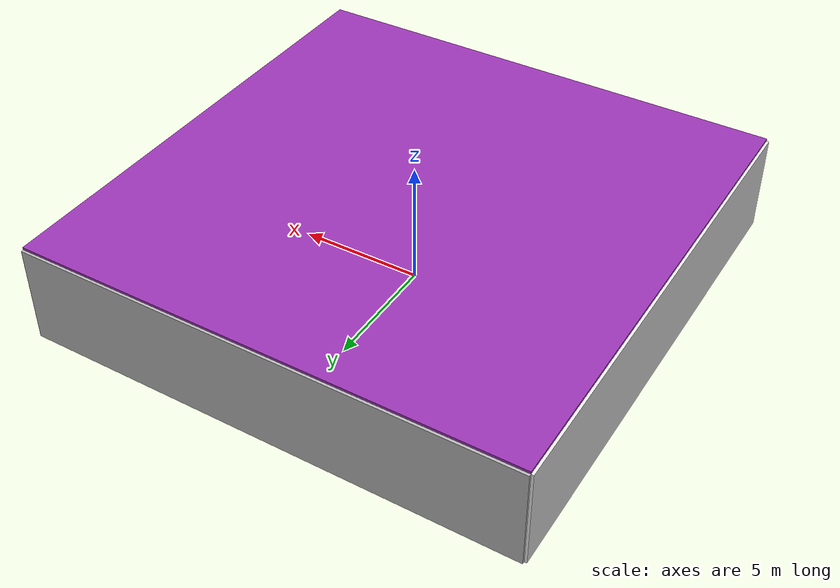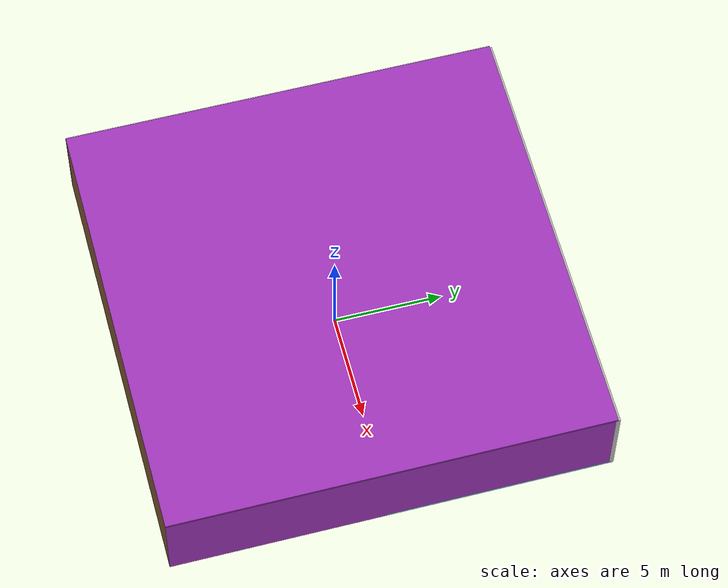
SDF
<sdf version="1.4">
 <world name="default">
  <physics type="ode">
   <max_step_size>0.001</max_step_size>
   <real_time_factor>1</real_time_factor>
   <real_time_update_rate>1000</real_time_update_rate>
   <gravity>0 0 -9.8</gravity>
  </physics>
  <scene><ambient>0.4 0.4 0.4 1</ambient><background>0.7 0.7 0.7 1</background><shadows>1</shadows></scene>
  <model name="Surrounding">
   <static>1</static>
   <link name="Ceiling">
    <collision name="Ceiling_Collision"><geometry><box><size>20 20 0.1</size></box></geometry></collision>
    <visual name="Ceiling_Visual">
     <geometry><box><size>20 20 0.1</size></box></geometry>
     <material>
      <script><uri>file://media/materials/scripts/gazebo.material</uri><name>Gazebo/Purple</name></script>
     </material>
    </visual>
    <pose>0 0 4.05 0 0 0</pose>
   </link>
   <link name="Wall_South">
    <collision name="Wall_South_Collision">
     <geometry><box><size>20 0 4</size></box></geometry>
     <pose>0 0 2 0 -0 0</pose>
    </collision>
    <visual name="Wall_South_Visual">
     <pose>0 0 2 0 -0 0</pose>
     <geometry><box><size>20 0 4</size></box></geometry>
     <material>
      <script><uri>file://media/materials/scripts/gazebo.material</uri><name>Gazebo/Wood</name></script>
     </material>
    </visual>
    <velocity_decay><linear>0</linear><angular>0</angular></velocity_decay>
    <pose>0 -10 0 0 -0 0</pose>
   </link>
   <link name="Wall_East">
    <collision name="Wall_21_Collision">
     <geometry><box><size>20 0 4</size></box></geometry>
     <pose>0 0 2 0 -0 0</pose>
    </collision>
    <visual name="Wall_21_Visual">
     <pose>0 0 2 0 -0 0</pose>
     <geometry><box><size>20 0 4</size></box></geometry>
     <material>
      <script><uri>file://media/materials/scripts/gazebo.material</uri><name>Gazebo/PurpleGlow</name></script>
     </material>
    </visual>
    <velocity_decay><linear>0</linear><angular>0</angular></velocity_decay>
    <pose>10 0 0 0 -0 1.5708</pose>
   </link>
   <link name="Wall_North">
    <collision name="Wall_22_Collision">
     <geometry><box><size>20 0.2 4</size></box></geometry>
     <pose>0 0 2 0 -0 0</pose>
    </collision>
    <visual name="Wall_22_Visual">
     <pose>0 0 2 0 -0 0</pose>
     <geometry><box><size>20 0.2 4</size></box></geometry>
     <material>
      <script><uri>file://media/materials/scripts/gazebo.material</uri><name>Gazebo/Pioneer2Body</name></script>
     </material>
    </visual>
    <velocity_decay><linear>0</linear><angular>0</angular></velocity_decay>
    <pose>0 10 0 0 -0 0</pose>
   </link>
   <link name="Wall_West">
    <collision name="Wall_23_Collision">
     <geometry><box><size>20 0.2 4</size></box></geometry>
     <pose>0 0 2 0 -0 0</pose>
    </collision>
    <visual name="Wall_23_Visual">
     <pose>0 0 2 0 -0 0</pose>
     <geometry><box><size>20 0.2 4</size></box></geometry>
     <material>
      <script><uri>file://media/materials/scripts/gazebo.material</uri><name>Gazebo/WhiteGlow</name></script>
     </material>
    </visual>
    <velocity_decay><linear>0</linear><angular>0</angular></velocity_decay>
    <pose>-10 0 0 0 0 -1.5708</pose>
   </link>
   <link name="Ground_link">
    <collision name="collision">
     <pose>0 0 .05 0 -0 0</pose>
     <geometry><box><size>20 20 0.1</size></box></geometry>
    </collision>
    <visual name="visual">
     <pose>0 0 .05 0 -0 0</pose>
     <geometry><box><size>20 20 0.1</size></box></geometry>
     <material>
      <script><uri>file://media/materials/scripts/gazebo.material</uri><name>Gazebo/SkyBlue</name></script>
     </material>
    </visual>
   </link>
   <static>1</static>
  </model>
  <spherical_coordinates>
   <surface_model>EARTH_WGS84</surface_model>
   <latitude_deg>0</latitude_deg>
   <longitude_deg>0</longitude_deg>
   <elevation>0</elevation>
   <heading_deg>0</heading_deg>
  </spherical_coordinates>
  <light name="lightball_0" type="diffuse">
   <diffuse>0.8 0.8 0.8 1</diffuse>
   <specular>0.2 0.2 0.2 1</specular>
   <attenuation>
    <range>100</range>
    <constant>0.7</constant>
    <linear>0.01</linear>
    <quadratic>0.001</quadratic>
   </attenuation>
   <direction>-0.5 0.1 -0.9</direction>
   <pose>0.687950675398 4.35472358018 3.66845504474 0 0 0</pose>
  </light>
  <light name="lightball_1" type="diffuse">
   <diffuse>0.8 0.8 0.8 1</diffuse>
   <specular>0.2 0.2 0.2 1</specular>
   <attenuation>
    <range>100</range>
    <constant>0.7</constant>
    <linear>0.01</linear>
    <quadratic>0.001</quadratic>
   </attenuation>
   <direction>-0.5 0.1 -0.9</direction>
   <pose>-5.16089282595 1.41658585565 1.48477435074 0 0 0</pose>
  </light>
  <light name="lightball_2" type="diffuse">
   <diffuse>0.8 0.8 0.8 1</diffuse>
   <specular>0.2 0.2 0.2 1</specular>
   <attenuation>
    <range>100</range>
    <constant>0.7</constant>
    <linear>0.01</linear>
    <quadratic>0.001</quadratic>
   </attenuation>
   <direction>-0.5 0.1 -0.9</direction>
   <pose>2.21568923014 -9.44584503165 2.33343793509 0 0 0</pose>
  </light>
  <light name="lightball_3" type="diffuse">
   <diffuse>0.8 0.8 0.8 1</diffuse>
   <specular>0.2 0.2 0.2 1</specular>
   <attenuation>
    <range>100</range>
    <constant>0.7</constant>
    <linear>0.01</linear>
    <quadratic>0.001</quadratic>
   </attenuation>
   <direction>-0.5 0.1 -0.9</direction>
   <pose>-1.15787419499 3.29106415092 0.62306929357 0 0 0</pose>
  </light>
  <light name="lightball_4" type="diffuse">
   <diffuse>0.8 0.8 0.8 1</diffuse>
   <specular>0.2 0.2 0.2 1</specular>
   <attenuation>
    <range>100</range>
    <constant>0.7</constant>
    <linear>0.01</linear>
    <quadratic>0.001</quadratic>
   </attenuation>
   <direction>-0.5 0.1 -0.9</direction>
   <pose>-6.00655427463 -7.88661209282 2.67080817424 0 0 0</pose>
  </light>
  <light name="lightball_5" type="diffuse">
   <diffuse>0.8 0.8 0.8 1</diffuse>
   <specular>0.2 0.2 0.2 1</specular>
   <attenuation>
    <range>100</range>
    <constant>0.7</constant>
    <linear>0.01</linear>
    <quadratic>0.001</quadratic>
   </attenuation>
   <direction>-0.5 0.1 -0.9</direction>
   <pose>8.25804026558 7.55309647401 3.7202585967 0 0 0</pose>
  </light>
  <light name="lightball_6" type="diffuse">
   <diffuse>0.8 0.8 0.8 1</diffuse>
   <specular>0.2 0.2 0.2 1</specular>
   <attenuation>
    <range>100</range>
    <constant>0.7</constant>
    <linear>0.01</linear>
    <quadratic>0.001</quadratic>
   </attenuation>
   <direction>-0.5 0.1 -0.9</direction>
   <pose>-4.30649841752 -3.39740098132 1.60489984343 0 0 0</pose>
  </light>
  <light name="lightball_7" type="diffuse">
   <diffuse>0.8 0.8 0.8 1</diffuse>
   <specular>0.2 0.2 0.2 1</specular>
   <attenuation>
    <range>100</range>
    <constant>0.7</constant>
    <linear>0.01</linear>
    <quadratic>0.001</quadratic>
   </attenuation>
   <direction>-0.5 0.1 -0.9</direction>
   <pose>7.18747416187 4.56550861922 2.52571050428 0 0 0</pose>
  </light>
  <light name="lightball_8" type="diffuse">
   <diffuse>0.8 0.8 0.8 1</diffuse>
   <specular>0.2 0.2 0.2 1</specular>
   <attenuation>
    <range>100</range>
    <constant>0.7</constant>
    <linear>0.01</linear>
    <quadratic>0.001</quadratic>
   </attenuation>
   <direction>-0.5 0.1 -0.9</direction>
   <pose>-8.2823117364 3.74438942252 2.93673967744 0 0 0</pose>
  </light>
  <light name="lightball_9" type="diffuse">
   <diffuse>0.8 0.8 0.8 1</diffuse>
   <specular>0.2 0.2 0.2 1</specular>
   <attenuation>
    <range>100</range>
    <constant>0.7</constant>
    <linear>0.01</linear>
    <quadratic>0.001</quadratic>
   </attenuation>
   <direction>-0.5 0.1 -0.9</direction>
   <pose>-0.947624316556 0.662736829266 3.01726907422 0 0 0</pose>
  </light>
  <light name="lightball_10" type="diffuse">
   <diffuse>0.8 0.8 0.8 1</diffuse>
   <specular>0.2 0.2 0.2 1</specular>
   <attenuation>
    <range>100</range>
    <constant>0.7</constant>
    <linear>0.01</linear>
    <quadratic>0.001</quadratic>
   </attenuation>
   <direction>-0.5 0.1 -0.9</direction>
   <pose>0.875236654925 -5.013377042 2.51571394598 0 0 0</pose>
  </light>
  <light name="lightball_11" type="diffuse">
   <diffuse>0.8 0.8 0.8 1</diffuse>
   <specular>0.2 0.2 0.2 1</specular>
   <attenuation>
    <range>100</range>
    <constant>0.7</constant>
    <linear>0.01</linear>
    <quadratic>0.001</quadratic>
   </attenuation>
   <direction>-0.5 0.1 -0.9</direction>
   <pose>-8.41248922961 -1.4884738507 3.0376588132 0 0 0</pose>
  </light>
  <light name="lightball_12" type="diffuse">
   <diffuse>0.8 0.8 0.8 1</diffuse>
   <specular>0.2 0.2 0.2 1</specular>
   <attenuation>
    <range>100</range>
    <constant>0.7</constant>
    <linear>0.01</linear>
    <quadratic>0.001</quadratic>
   </attenuation>
   <direction>-0.5 0.1 -0.9</direction>
   <pose>4.24185831568 -5.02101090875 2.68776654738 0 0 0</pose>
  </light>
  <include>
   <uri>model://textured_shapes</uri>
   <pose>-4.76046221607 4.55255122902 0 0 0 0.456835268921</pose>
  </include>
  <include>
   <uri>model://construction_cone</uri>
   <pose>-1.52492497586 -7.70323241371 0 0 0 2.13347592082</pose>
  </include>
  <include><uri>model://cabinet</uri><pose>1.78067539969 4.74366095615 0 0 0 0.306728331772</pose></include>
  <include>
   <uri>model://textured_shapes</uri>
   <pose>3.91810199511 -1.19361186744 0 0 0 1.38993955296</pose>
  </include>
  <include>
   <uri>model://robocup_3Dsim_goal</uri>
   <pose>4.0258915947 7.06566650928 0 0 0 0.586817273206</pose>
  </include>
 </world>
</sdf>

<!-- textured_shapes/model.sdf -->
<sdf version="1.6">
  <model name="textured_shapes">
    <pose>0 0 0.5 0 0 0</pose>
    <link name="box">
      <pose>0 -1.5 0 0 0 0</pose>
      <collision name="collision">
        <geometry>
          <box>
            <size>1 1 1</size>
          </box>
        </geometry>
      </collision>
      <visual name="visual">
        <geometry>
          <box>
            <size>1 1 1</size>
          </box>
        </geometry>
        <material>
          <script>
            <uri>model://../model_source/models/textured_shapes/materials/scripts</uri>
            <uri>model://../model_source/models/textured_shapes/materials/textures</uri>
            <name>TexturedShape/Squares</name>
          </script>
        </material>
      </visual>
    </link>
    <link name="sphere">
      <collision name="collision">
        <geometry>
          <sphere>
            <radius>0.5</radius>
          </sphere>
        </geometry>
      </collision>
      <visual name="visual">
        <geometry>
          <sphere>
            <radius>0.5</radius>
          </sphere>
        </geometry>
        <material>
          <script>
            <uri>model://../model_source/models/textured_shapes/materials/scripts</uri>
            <uri>model://../model_source/models/textured_shapes/materials/textures</uri>
            <name>TexturedShape/Squares</name>
          </script>
        </material>
      </visual>
    </link>
    <link name="cylinder">
      <pose>0 1.5 0 0 0 0</pose>
      <collision name="collision">
        <geometry>
          <cylinder>
            <radius>0.5</radius>
            <length>1</length>
          </cylinder>
        </geometry>
      </collision>
      <visual name="visual">
        <geometry>
          <cylinder>
            <radius>0.5</radius>
            <length>1</length>
          </cylinder>
        </geometry>
        <material>
          <script>
            <uri>model://../model_source/models/textured_shapes/materials/scripts</uri>
            <uri>model://../model_source/models/textured_shapes/materials/textures</uri>
            <name>TexturedShape/Squares</name>
          </script>
        </material>
      </visual>
    </link>
  </model>
</sdf>

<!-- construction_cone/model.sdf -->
<sdf version="1.5">
  <model name="Construction Cone">
    <link name="link">
      <collision name="collision">
        <geometry>
          <mesh>
            <scale>10 10 10</scale>
            <uri>file://isr-testbed/construction_cone/meshes/construction_cone.dae</uri>
          </mesh>
        </geometry>
      </collision>
      <visual name="visual">
        <geometry>
          <mesh>
            <scale>10 10 10</scale>
            <uri>file://isr-testbed/construction_cone/meshes/construction_cone.dae</uri>
          </mesh>
        </geometry>
      </visual>
    </link>
  </model>
</sdf>

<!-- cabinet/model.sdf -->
<sdf version="1.5">
  <model name="cabinet">
    <static>true</static>
    <link name="cabinet_bottom_plate">
      <inertial>
        <pose>0 0 -1 0 0 0</pose>
        <inertia>
          <ixx>2.050000</ixx>
          <ixy>0</ixy>
          <ixz>0</ixz>
          <iyy>2.050000</iyy>
          <iyz>0</iyz>
          <izz>2.050000</izz>
        </inertia>
        <mass>25.000000</mass>
      </inertial>
      <collision name="cabinet_bottom_plate_geom">
        <pose>0 0 0.010000 0 0 0</pose>
        <geometry>
          <box>
            <size>0.450000 0.450000 0.020000</size>
          </box>
        </geometry>
      </collision>
      <visual name="cabinet_bottom_plate_geom_visual">
        <pose>0 0 0.010000 0 0 0</pose>
        <geometry>
          <box>
            <size>0.450000 0.450000 0.020000</size>
          </box>
        </geometry>
        <material>
          <script>
            <uri>model://media/materials/scripts/gazebo.material</uri>
            <name>Gazebo/Wood</name>
          </script>
        </material>
      </visual>
      <collision name="cabinet_bottom_plate_geom_cabinet_back_plate">
        <pose>0.235000 0 0.510000 0 0 0</pose>
        <geometry>
          <box>
            <size>0.020000 0.450000 1.020000</size>
          </box>
        </geometry>
      </collision>
      <visual name="cabinet_bottom_plate_geom_cabinet_back_plate_visual">
        <pose>0.235000 0 0.510000 0 0 0</pose>
        <geometry>
          <box>
            <size>0.020000 0.450000 1.020000</size>
          </box>
        </geometry>
        <material>
          <script>
            <uri>model://media/materials/scripts/gazebo.material</uri>
            <name>Gazebo/Wood</name>
          </script>
        </material>
      </visual>
      <collision name="cabinet_bottom_plate_geom_cabinet_left_plate">
        <pose>0 0.235000 0.510000 0 0 0</pose>
        <geometry>
          <box>
            <size>0.450000 0.020000 1.020000</size>
          </box>
        </geometry>
      </collision>
      <visual name="cabinet_bottom_plate_geom_cabinet_left_plate_visual">
        <pose>0 0.235000 0.510000 0 0 0</pose>
        <geometry>
          <box>
            <size>0.450000 0.020000 1.020000</size>
          </box>
        </geometry>
        <material>
          <script>
            <uri>model://media/materials/scripts/gazebo.material</uri>
            <name>Gazebo/Wood</name>
          </script>
        </material>
      </visual>
      <collision name="cabinet_bottom_plate_geom_cabinet_middle_plate">
        <pose>0 0 0.510000 0 0 0</pose>
        <geometry>
          <box>
            <size>0.450000 0.450000 0.020000</size>
          </box>
        </geometry>
      </collision>
      <visual name="cabinet_bottom_plate_geom_cabinet_middle_plate_visual">
        <pose>0 0 0.510000 0 0 0</pose>
        <geometry>
          <box>
            <size>0.450000 0.450000 0.020000</size>
          </box>
        </geometry>
        <material>
          <script>
            <uri>model://media/materials/scripts/gazebo.material</uri>
            <name>Gazebo/Wood</name>
          </script>
        </material>
      </visual>
      <collision name="cabinet_bottom_plate_geom_cabinet_right_plate">
        <pose>0 -0.235000 0.510000 0 0 0</pose>
        <geometry>
          <box>
            <size>0.450000 0.020000 1.020000</size>
          </box>
        </geometry>
      </collision>
      <visual name="cabinet_bottom_plate_geom_cabinet_right_plate_visual">
        <pose>0 -0.235000 0.510000 0 0 0</pose>
        <geometry>
          <box>
            <size>0.450000 0.020000 1.020000</size>
          </box>
        </geometry>
        <material>
          <script>
            <uri>model://media/materials/scripts/gazebo.material</uri>
            <name>Gazebo/Wood</name>
          </script>
        </material>
      </visual>
      <collision name="cabinet_bottom_plate_geom_cabinet_top_plate">
        <pose>0 0 1.010000 0 0 0</pose>
        <geometry>
          <box>
            <size>0.450000 0.450000 0.020000</size>
          </box>
        </geometry>
      </collision>
      <visual name="cabinet_bottom_plate_geom_cabinet_top_plate_visual">
        <pose>0 0 1.010000 0 0 0</pose>
        <geometry>
          <box>
            <size>0.450000 0.450000 0.020000</size>
          </box>
        </geometry>
        <material>
          <script>
            <uri>model://media/materials/scripts/gazebo.material</uri>
            <name>Gazebo/Wood</name>
          </script>
        </material>
      </visual>
    </link>
  </model>
</sdf>

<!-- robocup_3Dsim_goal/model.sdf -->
<sdf version="1.5">
  <model name="robocup_3d_goal">
    <static>true</static>
    <link name="left_post">
      <pose>0 1.05 0.45 0 0 0</pose>
      <collision name="collision">
        <geometry>
          <cylinder>
            <radius>0.05</radius>
            <length>0.9</length>
          </cylinder>
        </geometry>
      </collision>
      <visual name="visual">
        <geometry>
          <cylinder>
            <radius>0.05</radius>
            <length>0.9</length>
          </cylinder>
        </geometry>
        <material>
          <script>
            <uri>file://media/materials/scripts/gazebo.material</uri>
            <name>Gazebo/ZincYellow</name>
          </script>
        </material>
      </visual>
    </link>
    <link name="left_support_horiz_lower">
      <pose>0.30 1.05 0.01 0 0 0</pose>
      <collision name="collision">
        <geometry>
          <box>
            <size>0.50 0.02 0.02</size>
          </box>
        </geometry>
      </collision>
      <visual name="visual">
        <geometry>
          <box>
            <size>0.50 0.02 0.02</size>
          </box>
        </geometry>
        <material>
          <script>
            <uri>file://media/materials/scripts/gazebo.material</uri>
            <name>Gazebo/White</name>
          </script>
        </material>
      </visual>
    </link>
    <link name="left_support_horiz_upper">
      <pose>0.30 1.05 0.79 0 0 0</pose>
      <collision name="collision">
        <geometry>
          <box>
            <size>0.50 0.02 0.02</size>
          </box>
        </geometry>
      </collision>
      <visual name="visual">
        <geometry>
          <box>
            <size>0.50 0.02 0.02</size>
          </box>
        </geometry>
        <material>
          <script>
            <uri>file://media/materials/scripts/gazebo.material</uri>
            <name>Gazebo/White</name>
          </script>
        </material>
      </visual>
    </link>
    <link name="left_support_vertical">
      <pose>0.56 1.05 0.4 0 1.5708 0</pose>
      <collision name="collision">
        <geometry>
          <box>
            <size>0.80 0.02 0.02</size>
          </box>
        </geometry>
      </collision>
      <visual name="visual">
        <geometry>
          <box>
            <size>0.80 0.02 0.02</size>
          </box>
        </geometry>
        <material>
          <script>
            <uri>file://media/materials/scripts/gazebo.material</uri>
            <name>Gazebo/White</name>
          </script>
        </material>
      </visual>
    </link>
    <link name="right_support_horiz_lower">
      <pose>0.30 -1.05 0.01 0 0 0</pose>
      <collision name="collision">
        <geometry>
          <box>
            <size>0.50 0.02 0.02</size>
          </box>
        </geometry>
      </collision>
      <visual name="visual">
        <geometry>
          <box>
            <size>0.50 0.02 0.02</size>
          </box>
        </geometry>
        <material>
          <script>
            <uri>file://media/materials/scripts/gazebo.material</uri>
            <name>Gazebo/White</name>
          </script>
        </material>
      </visual>
    </link>
    <link name="right_support_horiz_upper">
      <pose>0.30 -1.05 0.79 0 0 0</pose>
      <collision name="collision">
        <geometry>
          <box>
            <size>0.50 0.02 0.02</size>
          </box>
        </geometry>
      </collision>
      <visual name="visual">
        <geometry>
          <box>
            <size>0.50 0.02 0.02</size>
          </box>
        </geometry>
        <material>
          <script>
            <uri>file://media/materials/scripts/gazebo.material</uri>
            <name>Gazebo/White</name>
          </script>
        </material>
      </visual>
    </link>
    <link name="right_support_vertical">
      <pose>0.56 -1.05 0.4 0 1.5708 0</pose>
      <collision name="collision">
        <geometry>
          <box>
            <size>0.80 0.02 0.02</size>
          </box>
        </geometry>
      </collision>
      <visual name="visual">
        <geometry>
          <box>
            <size>0.80 0.02 0.02</size>
          </box>
        </geometry>
        <material>
          <script>
            <uri>file://media/materials/scripts/gazebo.material</uri>
            <name>Gazebo/White</name>
          </script>
        </material>
      </visual>
    </link>
    <link name="center_support_horiz_lower">
      <pose>0.56 0 0.01 0 1.5708 0</pose>
      <collision name="collision">
        <geometry>
          <box>
            <size>0.02 2.08 0.02</size>
          </box>
        </geometry>
      </collision>
      <visual name="visual">
        <geometry>
          <box>
            <size>0.02 2.08 0.02</size>
          </box>
        </geometry>
        <material>
          <script>
            <uri>file://media/materials/scripts/gazebo.material</uri>
            <name>Gazebo/White</name>
          </script>
        </material>
      </visual>
    </link>
    <link name="center_support_horiz_upper">
      <pose>0.56 0 0.79 0 1.5708 0</pose>
      <collision name="collision">
        <geometry>
          <box>
            <size>0.02 2.08 0.02</size>
          </box>
        </geometry>
      </collision>
      <visual name="visual">
        <geometry>
          <box>
            <size>0.02 2.08 0.02</size>
          </box>
        </geometry>
        <material>
          <script>
            <uri>file://media/materials/scripts/gazebo.material</uri>
            <name>Gazebo/White</name>
          </script>
        </material>
      </visual>
    </link>
    <link name="right_post">
      <pose>0 -1.05 0.45 0 0 0</pose>
      <collision name="collision">
        <geometry>
          <cylinder>
            <radius>0.05</radius>
            <length>0.9</length>
          </cylinder>
        </geometry>
      </collision>
      <visual name="visual">
        <geometry>
          <cylinder>
            <radius>0.05</radius>
            <length>0.9</length>
          </cylinder>
        </geometry>
        <material>
          <script>
            <uri>file://media/materials/scripts/gazebo.material</uri>
            <name>Gazebo/ZincYellow</name>
          </script>
        </material>
      </visual>
    </link>
    <link name="crossbar">
      <pose>0 0 0.85 1.57 1.57 0</pose>
      <collision name="collision">
        <geometry>
          <cylinder>
            <radius>0.05</radius>
            <length>2.0</length>
          </cylinder>
        </geometry>
      </collision>
      <visual name="visual">
        <geometry>
          <cylinder>
            <radius>0.05</radius>
            <length>2.0</length>
          </cylinder>
        </geometry>
        <material>
          <script>
            <uri>file://media/materials/scripts/gazebo.material</uri>
            <name>Gazebo/ZincYellow</name>
          </script>
        </material>
      </visual>
    </link>
    <link name="center_net">
      <pose>0.56 0 0.40 0 0 0</pose>
      <collision name="collision">
        <geometry>
          <box>
            <size>0.01 2.1 0.80</size>
          </box>
        </geometry>
      </collision>
      <visual name="visual">
        <geometry>
          <box>
            <size>0.01 2.1 0.80</size>
          </box>
        </geometry>
        <material>
          <script>
            <uri>model://../model_source/models/robocup09_spl_field/materials/scripts/</uri>
            <uri>model://../model_source/models/robocup09_spl_field/materials/textures/</uri>
            <name>RoboCup/Net</name>
          </script>
        </material>
      </visual>
    </link>
    <link name="left_net">
      <pose>0.30 1.05 0.40 0 0 0</pose>
      <collision name="collision">
        <geometry>
          <box>
            <size>0.50 0.01 0.76</size>
          </box>
        </geometry>
      </collision>
      <visual name="visual">
        <geometry>
          <box>
            <size>0.50 0.01 0.76</size>
          </box>
        </geometry>
        <material>
          <script>
            <uri>model://../model_source/models/robocup09_spl_field/materials/scripts/</uri>
            <uri>model://../model_source/models/robocup09_spl_field/materials/textures/</uri>
            <name>RoboCup/Net</name>
          </script>
        </material>
      </visual>
    </link>
    <link name="right_net">
      <pose>0.30 -1.05 0.40 0 0 0</pose>
      <collision name="collision">
        <geometry>
          <box>
            <size>0.50 0.01 0.76</size>
          </box>
        </geometry>
      </collision>
      <visual name="visual">
        <geometry>
          <box>
            <size>0.50 0.01 0.76</size>
          </box>
        </geometry>
        <material>
          <script>
            <uri>model://../model_source/models/robocup09_spl_field/materials/scripts/</uri>
            <uri>model://../model_source/models/robocup09_spl_field/materials/textures/</uri>
            <name>RoboCup/Net</name>
          </script>
        </material>
      </visual>
    </link>
  </model>
</sdf>
